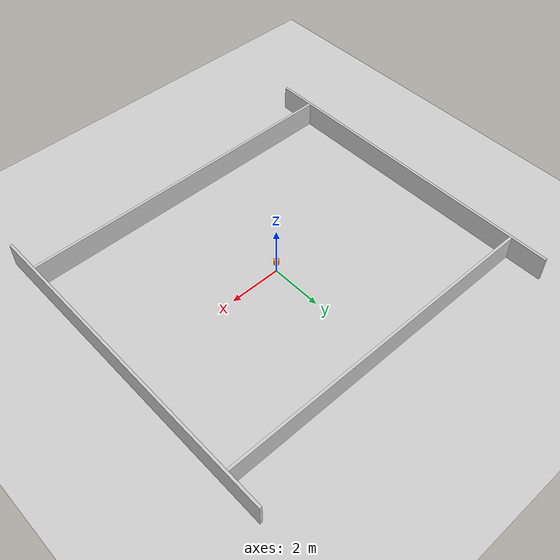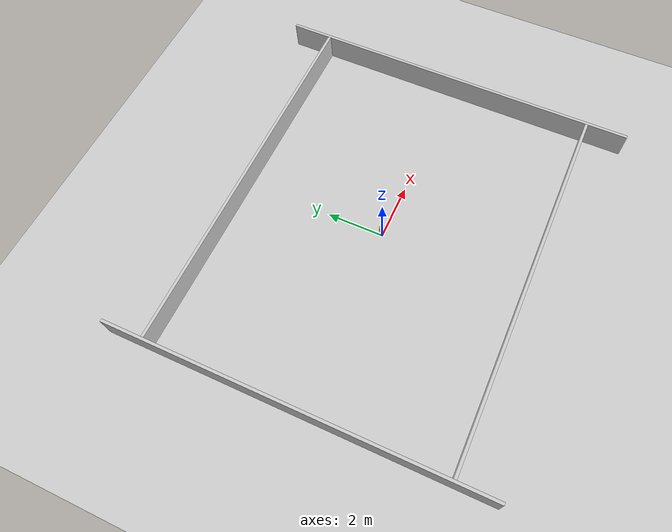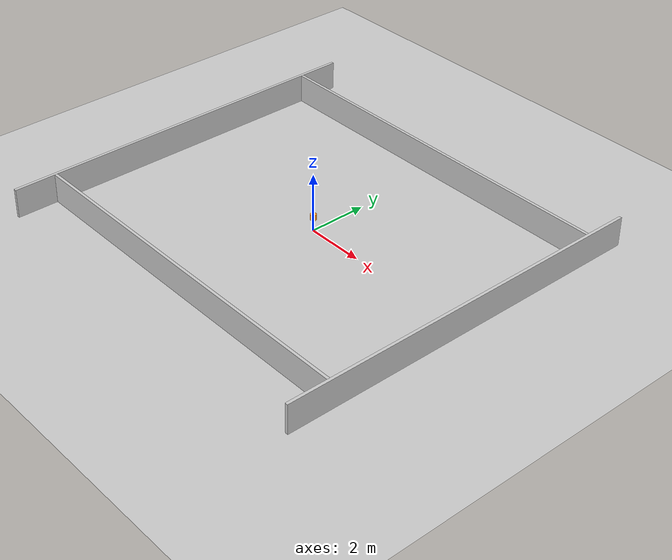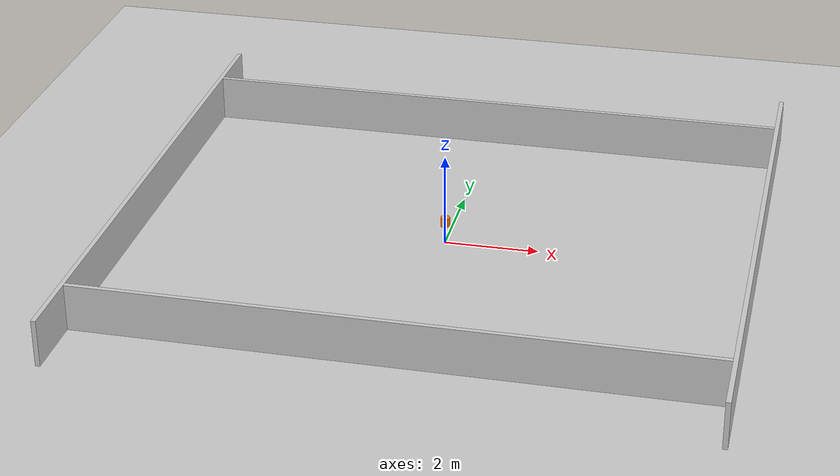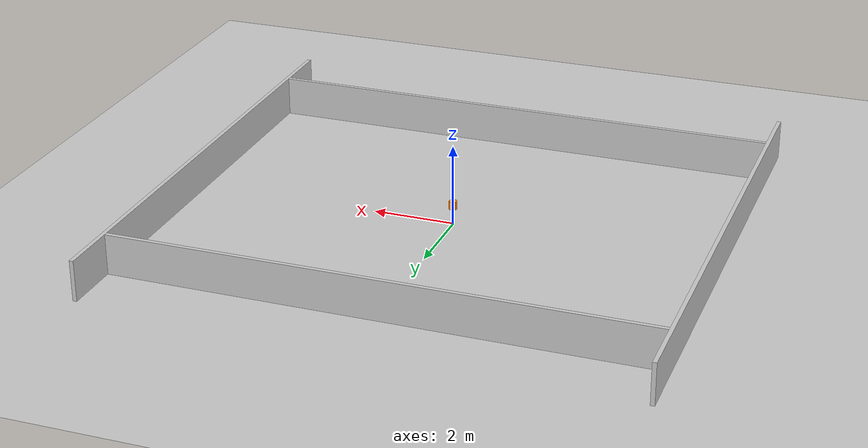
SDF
<?xml version="1.0"?>
<sdf version="1.6">
  <world name="single_source">
    <physics type="ode">
      <max_step_size>0.001</max_step_size>
      <real_time_factor>1</real_time_factor>
      <real_time_update_rate>1000</real_time_update_rate>
    </physics>

    <!-- 조명 설정 -->
    <include>
      <uri>model://sun</uri>
    </include>

    <!-- 땅바닥 설정 -->
    <include>
      <uri>model://ground_plane</uri>
    </include>

    <!-- 월드 플러그인 -->
    <plugin name="radiation_world_plugin" filename="libgazebo_ros_state.so">
      <ros>
        <namespace>/gazebo</namespace>
      </ros>
      <update_rate>1.0</update_rate>
    </plugin>

    <!-- 전역 field에 대한 intensity를 계산하는 virtual sensor -->
    <plugin name="radiation_virtual_sensor" filename="libradiation_virtual_sensor.so">
      <debug>false</debug>
      <air_attenuation_coeff>0.001</air_attenuation_coeff>
    </plugin>

    <!-- 외부 벽 -->
    <model name="radiation_obstacle_wall_left">
      <static>true</static>
      <pose>-6.55 0 0.5 0 0 0</pose>
      <link name="link">
        <collision name="collision">
          <geometry><box><size>0.1 13 1</size></box></geometry>
        </collision>
        <visual name="visual">
          <geometry><box><size>0.1 13 1</size></box></geometry>
          <material>
            <ambient>0.8 0.8 0.8 1</ambient>
            <diffuse>0.8 0.8 0.8 1</diffuse>
          </material>
        </visual>
      </link>
      <plugin name="obstacle_plugin" filename="libradiation_obstacle_plugin.so">
        <material_type>lead</material_type>
      </plugin>
    </model>
    <model name="radiation_obstacle_wall_right">
      <static>true</static>
      <pose>6.55 0 0.5 0 0 0</pose>
      <link name="link">
        <collision name="collision">
          <geometry><box><size>0.1 13 1</size></box></geometry>
        </collision>
        <visual name="visual">
          <geometry><box><size>0.1 13 1</size></box></geometry>
          <material>
            <ambient>0.8 0.8 0.8 1</ambient>
            <diffuse>0.8 0.8 0.8 1</diffuse>
          </material>
        </visual>
      </link>
      <plugin name="obstacle_plugin" filename="libradiation_obstacle_plugin.so">
        <material_type>lead</material_type>
      </plugin>
    </model>
    <model name="radiation_obstacle_wall_top">
      <static>true</static>
      <pose>0 5.05 0.5 0 0 0</pose>
      <link name="link">
        <collision name="collision">
          <geometry><box><size>13 0.1 1</size></box></geometry>
        </collision>
        <visual name="visual">
          <geometry><box><size>13 0.1 1</size></box></geometry>
          <material>
            <ambient>0.8 0.8 0.8 1</ambient>
            <diffuse>0.8 0.8 0.8 1</diffuse>
          </material>
        </visual>
      </link>
      <plugin name="obstacle_plugin" filename="libradiation_obstacle_plugin.so">
        <material_type>lead</material_type>
      </plugin>
    </model>
    <model name="radiation_obstacle_wall_bottom">
      <static>true</static>
      <pose>0 -5.05 0.5 0 0 0</pose>
      <link name="link">
        <collision name="collision">
          <geometry><box><size>13 0.1 1</size></box></geometry>
        </collision>
        <visual name="visual">
          <geometry><box><size>13 0.1 1</size></box></geometry>
          <material>
            <ambient>0.8 0.8 0.8 1</ambient>
            <diffuse>0.8 0.8 0.8 1</diffuse>
          </material>
        </visual>
      </link>
      <plugin name="obstacle_plugin" filename="libradiation_obstacle_plugin.so">
        <material_type>lead</material_type>
      </plugin>
    </model>

    <!-- 방사능 소스 모델 -->
    <model name="radiation_source">
      <static>true</static>
      <pose>0 0 0.5 0 0 0</pose>
      <link name="link">
        <collision name="collision">
          <geometry>
            <cylinder>
              <radius>0.1</radius>
              <length>0.2</length>
            </cylinder>
          </geometry>
        </collision>
        <visual name="visual">
          <geometry>
            <cylinder>
              <radius>0.1</radius>
              <length>0.2</length>
            </cylinder>
          </geometry>
          <material>
            <ambient>1 0.5 0 1</ambient>
            <diffuse>1 0.5 0 1</diffuse>
            <emissive>1 0.5 0 1</emissive>
          </material>
        </visual>
      </link>
      <plugin name="radiation_source_plugin" filename="libradiation_source_plugin.so">
        <initial_intensity>100.0</initial_intensity>
        <radius>0.1</radius>
      </plugin>
    </model>
  </world>
</sdf>
